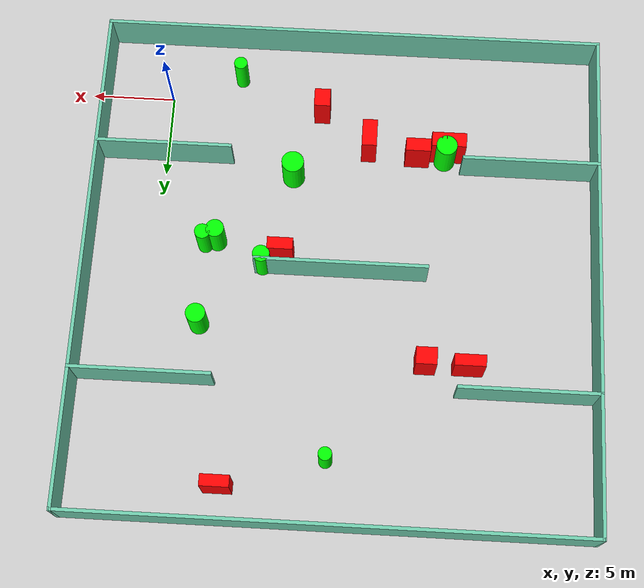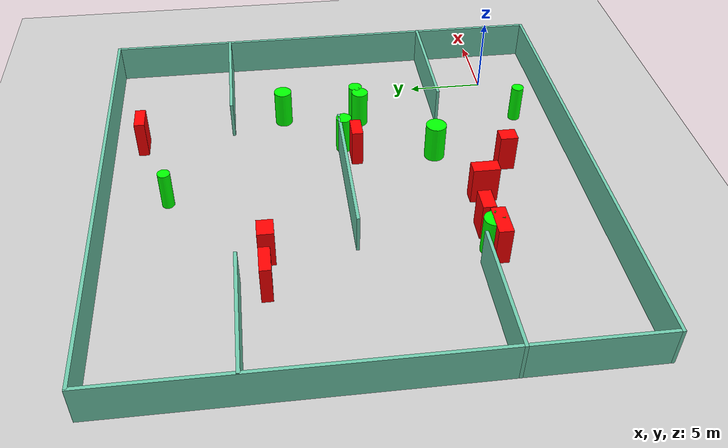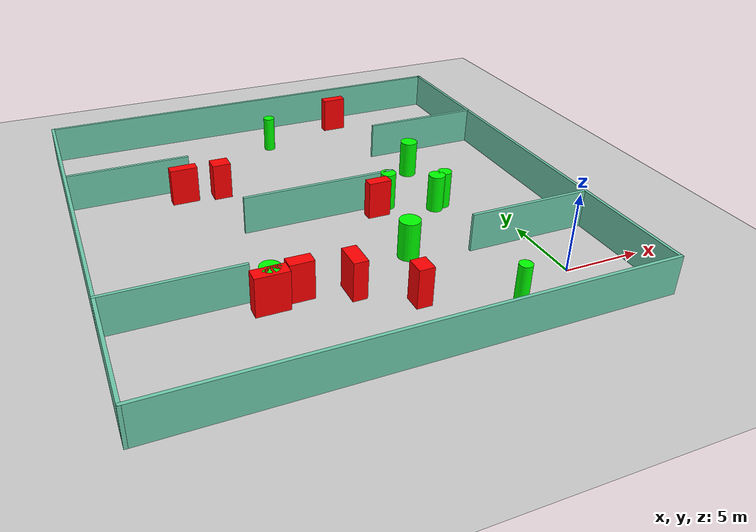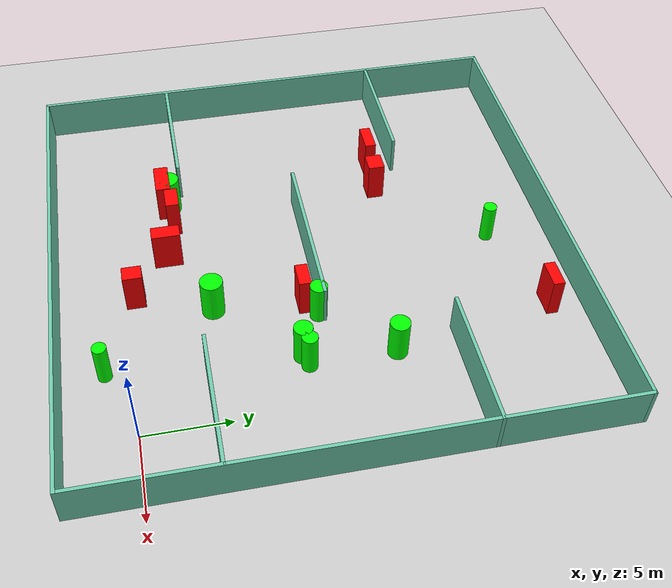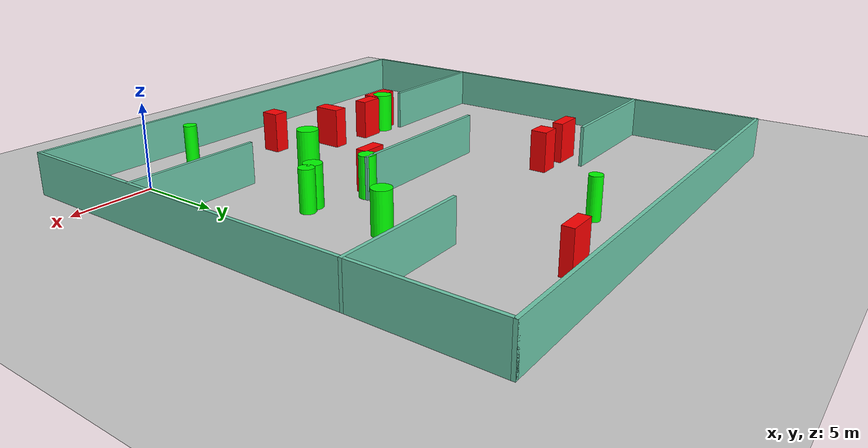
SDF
<sdf version="1.7">
 <world name="default">
  <light name="sun" type="directional">
   <pose>0 0 10 0 -0 0</pose>
   <diffuse>0.8 0.8 0.8 1</diffuse>
   <specular>0.2 0.2 0.2 1</specular>
   <attenuation>
    <range>1000</range>
    <constant>0.9</constant>
    <linear>0.01</linear>
    <quadratic>0.001</quadratic>
   </attenuation>
   <direction>-0.5 0.1 -0.9</direction>
   <spot><inner_angle>0</inner_angle><outer_angle>0</outer_angle><falloff>0</falloff></spot>
  </light>
  <model name="ground_plane">
   <static>1</static>
   <link name="link">
    <collision name="collision">
     <geometry><plane><normal>0 0 1</normal><size>100 100</size></plane></geometry>
     <surface>
      <contact><collide_bitmask>65535</collide_bitmask></contact>
      <friction><ode><mu>100</mu><mu2>50</mu2></ode></friction>
     </surface>
    </collision>
    <visual name="visual">
     <cast_shadows>0</cast_shadows>
     <geometry><plane><normal>0 0 1</normal><size>100 100</size></plane></geometry>
     <material>
      <script><uri>file://media/materials/scripts/gazebo.material</uri><name>Gazebo/Grey</name></script>
     </material>
    </visual>
   </link>
  </model>
  <gravity>0 0 -9.8</gravity>
  <magnetic_field>6e-06 2.3e-05 -4.2e-05</magnetic_field>
  <atmosphere type="adiabatic"/>
  <physics type="ode">
   <max_step_size>0.001</max_step_size>
   <real_time_factor>1</real_time_factor>
   <real_time_update_rate>1000</real_time_update_rate>
  </physics>
  <scene><ambient>0.4 0.4 0.4 1</ambient><background>0.7 0.7 0.7 1</background><shadows>1</shadows></scene>
  <spherical_coordinates>
   <surface_model>EARTH_WGS84</surface_model>
   <latitude_deg>0</latitude_deg>
   <longitude_deg>0</longitude_deg>
   <elevation>0</elevation>
   <heading_deg>0</heading_deg>
  </spherical_coordinates>
  <model name="my_base_walls">
   <link name="Wall_10">
    <collision name="Wall_10_Collision">
     <geometry><box><size>8.2 0.2 2.5</size></box></geometry>
     <pose>0 0 1.25 0 -0 0</pose>
    </collision>
    <visual name="Wall_10_Visual">
     <pose>0 0 1.25 0 -0 0</pose>
     <geometry><box><size>8.2 0.2 2.5</size></box></geometry>
     <material>
      <script><uri>file://media/materials/scripts/gazebo.material</uri><name>Gazebo/Grey</name></script>
      <ambient>0.435294 0.796078 0.67451 1</ambient>
     </material>
     <meta><layer>0</layer></meta>
    </visual>
    <pose>-11 -7 0 0 -0 0</pose>
   </link>
   <link name="Wall_12">
    <collision name="Wall_12_Collision">
     <geometry><box><size>8.2 0.2 2.5</size></box></geometry>
     <pose>0 0 1.25 0 -0 0</pose>
    </collision>
    <visual name="Wall_12_Visual">
     <pose>0 0 1.25 0 -0 0</pose>
     <geometry><box><size>8.2 0.2 2.5</size></box></geometry>
     <material>
      <script><uri>file://media/materials/scripts/gazebo.material</uri><name>Gazebo/Grey</name></script>
      <ambient>0.435294 0.796078 0.67451 1</ambient>
     </material>
     <meta><layer>0</layer></meta>
    </visual>
    <pose>-11 7 0 0 -0 0</pose>
   </link>
   <link name="Wall_14">
    <collision name="Wall_14_Collision">
     <geometry><box><size>8.2 0.2 2.5</size></box></geometry>
     <pose>0 0 1.25 0 -0 0</pose>
    </collision>
    <visual name="Wall_14_Visual">
     <pose>0 0 1.25 0 -0 0</pose>
     <geometry><box><size>8.2 0.2 2.5</size></box></geometry>
     <material>
      <script><uri>file://media/materials/scripts/gazebo.material</uri><name>Gazebo/Grey</name></script>
      <ambient>0.435294 0.796078 0.67451 1</ambient>
     </material>
     <meta><layer>0</layer></meta>
    </visual>
    <pose>11 7 0 0 -0 3.14159</pose>
   </link>
   <link name="Wall_16">
    <collision name="Wall_16_Collision">
     <geometry><box><size>10.2 0.2 2.5</size></box></geometry>
     <pose>0 0 1.25 0 -0 0</pose>
    </collision>
    <visual name="Wall_16_Visual">
     <pose>0 0 1.25 0 -0 0</pose>
     <geometry><box><size>10.2 0.2 2.5</size></box></geometry>
     <material>
      <script><uri>file://media/materials/scripts/gazebo.material</uri><name>Gazebo/Grey</name></script>
      <ambient>0.435294 0.796078 0.67451 1</ambient>
     </material>
     <meta><layer>0</layer></meta>
    </visual>
    <pose>0 0 0 0 -0 3.14159</pose>
   </link>
   <link name="Wall_2">
    <collision name="Wall_2_Collision">
     <geometry><box><size>30.2 0.2 2.5</size></box></geometry>
     <pose>0 0 1.25 0 -0 0</pose>
    </collision>
    <visual name="Wall_2_Visual">
     <pose>0 0 1.25 0 -0 0</pose>
     <geometry><box><size>30.2 0.2 2.5</size></box></geometry>
     <material>
      <script><uri>file://media/materials/scripts/gazebo.material</uri><name>Gazebo/Grey</name></script>
      <ambient>0.435294 0.796078 0.67451 1</ambient>
     </material>
     <meta><layer>0</layer></meta>
    </visual>
    <pose>0 -15 0 0 -0 3.14159</pose>
   </link>
   <link name="Wall_3">
    <collision name="Wall_3_Collision">
     <geometry><box><size>30.2 0.2 2.5</size></box></geometry>
     <pose>0 0 1.25 0 -0 0</pose>
    </collision>
    <visual name="Wall_3_Visual">
     <pose>0 0 1.25 0 -0 0</pose>
     <geometry><box><size>30.2 0.2 2.5</size></box></geometry>
     <material>
      <script><uri>file://media/materials/scripts/gazebo.material</uri><name>Gazebo/Grey</name></script>
      <ambient>0.435294 0.796078 0.67451 1</ambient>
     </material>
     <meta><layer>0</layer></meta>
    </visual>
    <pose>-15 0 0 0 -0 1.5708</pose>
   </link>
   <link name="Wall_4">
    <collision name="Wall_4_Collision">
     <geometry><box><size>30.2 0.2 2.5</size></box></geometry>
     <pose>0 0 1.25 0 -0 0</pose>
    </collision>
    <visual name="Wall_4_Visual">
     <pose>0 0 1.25 0 -0 0</pose>
     <geometry><box><size>30.2 0.2 2.5</size></box></geometry>
     <material>
      <script><uri>file://media/materials/scripts/gazebo.material</uri><name>Gazebo/Grey</name></script>
      <ambient>0.435294 0.796078 0.67451 1</ambient>
     </material>
     <meta><layer>0</layer></meta>
    </visual>
    <pose>0 15 0 0 -0 0</pose>
   </link>
   <link name="Wall_6">
    <collision name="Wall_6_Collision">
     <geometry><box><size>30.2 0.2 2.5</size></box></geometry>
     <pose>0 0 1.25 0 -0 0</pose>
    </collision>
    <visual name="Wall_6_Visual">
     <pose>0 0 1.25 0 -0 0</pose>
     <geometry><box><size>30.2 0.2 2.5</size></box></geometry>
     <material>
      <script><uri>file://media/materials/scripts/gazebo.material</uri><name>Gazebo/Grey</name></script>
      <ambient>0.435294 0.796078 0.67451 1</ambient>
     </material>
     <meta><layer>0</layer></meta>
    </visual>
    <pose>15 0 0 0 -0 1.5708</pose>
   </link>
   <link name="Wall_8">
    <collision name="Wall_8_Collision">
     <geometry><box><size>8.2 0.2 2.5</size></box></geometry>
     <pose>0 0 1.25 0 -0 0</pose>
    </collision>
    <visual name="Wall_8_Visual">
     <pose>0 0 1.25 0 -0 0</pose>
     <geometry><box><size>8.2 0.2 2.5</size></box></geometry>
     <material>
      <script><uri>file://media/materials/scripts/gazebo.material</uri><name>Gazebo/Grey</name></script>
      <ambient>0.435294 0.796078 0.67451 1</ambient>
     </material>
     <meta><layer>0</layer></meta>
    </visual>
    <pose>11 -7 0 0 -0 3.14159</pose>
   </link>
   <static>1</static>
   <pose>-11 11 0 0 -0 0</pose>
  </model>
  <model name="cylinder1">
   <static>1</static>
   <link name="link">
    <inertial>
     <mass>1</mass>
     <inertia><ixx>0.5</ixx><ixy>0</ixy><ixz>0</ixz><iyy>0.5</iyy><iyz>0</iyz><izz>1</izz></inertia>
    </inertial>
    <collision name="collision">
     <geometry><cylinder><radius>0.39953588530757655</radius><length>2.5</length></cylinder></geometry>
    </collision>
    <visual name="visual">
     <geometry><cylinder><radius>0.39953588530757655</radius><length>2.5</length></cylinder></geometry>
     <material>
      <ambient>0 1 0 1</ambient>
      <diffuse>0 1 0 1</diffuse>
      <specular>0.1 0.1 0.1 1</specular>
      <emissive>0 0 0 0</emissive>
     </material>
    </visual>
   </link>
   <pose>-4.225117987874423 -1.530377562288848 1.25 0 0 0</pose>
  </model>
  <model name="cylinder2">
   <static>1</static>
   <link name="link">
    <inertial>
     <mass>1</mass>
     <inertia><ixx>0.5</ixx><ixy>0</ixy><ixz>0</ixz><iyy>0.5</iyy><iyz>0</iyz><izz>1</izz></inertia>
    </inertial>
    <collision name="collision">
     <geometry><cylinder><radius>0.5021994619351844</radius><length>2.5</length></cylinder></geometry>
    </collision>
    <visual name="visual">
     <geometry><cylinder><radius>0.5021994619351844</radius><length>2.5</length></cylinder></geometry>
     <material>
      <ambient>0 1 0 1</ambient>
      <diffuse>0 1 0 1</diffuse>
      <specular>0.1 0.1 0.1 1</specular>
      <emissive>0 0 0 0</emissive>
     </material>
    </visual>
   </link>
   <pose>-6.354709042963311 10.72125062067855 1.25 0 0 0</pose>
  </model>
  <model name="cylinder3">
   <static>1</static>
   <link name="link">
    <inertial>
     <mass>1</mass>
     <inertia><ixx>0.5</ixx><ixy>0</ixy><ixz>0</ixz><iyy>0.5</iyy><iyz>0</iyz><izz>1</izz></inertia>
    </inertial>
    <collision name="collision">
     <geometry><cylinder><radius>0.3908945244252667</radius><length>2.5</length></cylinder></geometry>
    </collision>
    <visual name="visual">
     <geometry><cylinder><radius>0.3908945244252667</radius><length>2.5</length></cylinder></geometry>
     <material>
      <ambient>0 1 0 1</ambient>
      <diffuse>0 1 0 1</diffuse>
      <specular>0.1 0.1 0.1 1</specular>
      <emissive>0 0 0 0</emissive>
     </material>
    </visual>
   </link>
   <pose>-10.735094178507044 22.181350953769666 1.25 0 0 0</pose>
  </model>
  <model name="cylinder4">
   <static>1</static>
   <link name="link">
    <inertial>
     <mass>1</mass>
     <inertia><ixx>0.5</ixx><ixy>0</ixy><ixz>0</ixz><iyy>0.5</iyy><iyz>0</iyz><izz>1</izz></inertia>
    </inertial>
    <collision name="collision">
     <geometry><cylinder><radius>0.45488550672376277</radius><length>2.5</length></cylinder></geometry>
    </collision>
    <visual name="visual">
     <geometry><cylinder><radius>0.45488550672376277</radius><length>2.5</length></cylinder></geometry>
     <material>
      <ambient>0 1 0 1</ambient>
      <diffuse>0 1 0 1</diffuse>
      <specular>0.1 0.1 0.1 1</specular>
      <emissive>0 0 0 0</emissive>
     </material>
    </visual>
   </link>
   <pose>-2.839135456511009 9.535449105735696 1.25 0 0 0</pose>
  </model>
  <model name="cylinder5">
   <static>1</static>
   <link name="link">
    <inertial>
     <mass>1</mass>
     <inertia><ixx>0.5</ixx><ixy>0</ixy><ixz>0</ixz><iyy>0.5</iyy><iyz>0</iyz><izz>1</izz></inertia>
    </inertial>
    <collision name="collision">
     <geometry><cylinder><radius>0.5386773435699412</radius><length>2.5</length></cylinder></geometry>
    </collision>
    <visual name="visual">
     <geometry><cylinder><radius>0.5386773435699412</radius><length>2.5</length></cylinder></geometry>
     <material>
      <ambient>0 1 0 1</ambient>
      <diffuse>0 1 0 1</diffuse>
      <specular>0.1 0.1 0.1 1</specular>
      <emissive>0 0 0 0</emissive>
     </material>
    </visual>
   </link>
   <pose>-3.5486760895364995 9.306538325757305 1.25 0 0 0</pose>
  </model>
  <model name="cylinder6">
   <static>1</static>
   <link name="link">
    <inertial>
     <mass>1</mass>
     <inertia><ixx>0.5</ixx><ixy>0</ixy><ixz>0</ixz><iyy>0.5</iyy><iyz>0</iyz><izz>1</izz></inertia>
    </inertial>
    <collision name="collision">
     <geometry><cylinder><radius>0.5738479885279173</radius><length>2.5</length></cylinder></geometry>
    </collision>
    <visual name="visual">
     <geometry><cylinder><radius>0.5738479885279173</radius><length>2.5</length></cylinder></geometry>
     <material>
      <ambient>0 1 0 1</ambient>
      <diffuse>0 1 0 1</diffuse>
      <specular>0.1 0.1 0.1 1</specular>
      <emissive>0 0 0 0</emissive>
     </material>
    </visual>
   </link>
   <pose>-2.887811676719412 14.510876276445536 1.25 0 0 0</pose>
  </model>
  <model name="cylinder7">
   <static>1</static>
   <link name="link">
    <inertial>
     <mass>1</mass>
     <inertia><ixx>0.5</ixx><ixy>0</ixy><ixz>0</ixz><iyy>0.5</iyy><iyz>0</iyz><izz>1</izz></inertia>
    </inertial>
    <collision name="collision">
     <geometry><cylinder><radius>0.6621544283989319</radius><length>2.5</length></cylinder></geometry>
    </collision>
    <visual name="visual">
     <geometry><cylinder><radius>0.6621544283989319</radius><length>2.5</length></cylinder></geometry>
     <material>
      <ambient>0 1 0 1</ambient>
      <diffuse>0 1 0 1</diffuse>
      <specular>0.1 0.1 0.1 1</specular>
      <emissive>0 0 0 0</emissive>
     </material>
    </visual>
   </link>
   <pose>-7.819512430454065 4.851296563185095 1.25 0 0 0</pose>
  </model>
  <model name="cylinder8">
   <static>1</static>
   <link name="link">
    <inertial>
     <mass>1</mass>
     <inertia><ixx>0.5</ixx><ixy>0</ixy><ixz>0</ixz><iyy>0.5</iyy><iyz>0</iyz><izz>1</izz></inertia>
    </inertial>
    <collision name="collision">
     <geometry><cylinder><radius>0.6298856025372874</radius><length>2.5</length></cylinder></geometry>
    </collision>
    <visual name="visual">
     <geometry><cylinder><radius>0.6298856025372874</radius><length>2.5</length></cylinder></geometry>
     <material>
      <ambient>0 1 0 1</ambient>
      <diffuse>0 1 0 1</diffuse>
      <specular>0.1 0.1 0.1 1</specular>
      <emissive>0 0 0 0</emissive>
     </material>
    </visual>
   </link>
   <pose>-16.945579343401352 3.2905494434318037 1.25 0 0 0</pose>
  </model>
  <model name="box1">
   <static>1</static>
   <link name="link">
    <inertial>
     <mass>1</mass>
     <inertia><ixx>0.083</ixx><ixy>0</ixy><ixz>0</ixz><iyy>0.083</iyy><iyz>0</iyz><izz>0.083</izz></inertia>
    </inertial>
    <collision name="collision">
     <geometry><box><size>0.893144355504677 1.6880626439264854 2.5</size></box></geometry>
    </collision>
    <visual name="visual">
     <geometry><box><size>0.893144355504677 1.6880626439264854 2.5</size></box></geometry>
     <material>
      <ambient>1 0 0 1</ambient>
      <diffuse>1 0 0 1</diffuse>
      <specular>0.1 0.1 0.1 1</specular>
      <emissive>0 0 0 0</emissive>
     </material>
    </visual>
    <sensor name="my_contact" type="contact">
     <contact><collision>box_collision</collision><topic>__default_topic__</topic></contact>
    </sensor>
   </link>
   <pose>-12.30226979156889 2.6851811940887593 1.25 0 0 0</pose>
  </model>
  <model name="box2">
   <static>1</static>
   <link name="link">
    <inertial>
     <mass>1</mass>
     <inertia><ixx>0.083</ixx><ixy>0</ixy><ixz>0</ixz><iyy>0.083</iyy><iyz>0</iyz><izz>0.083</izz></inertia>
    </inertial>
    <collision name="collision">
     <geometry><box><size>1.6654228239862008 0.6713137461866022 2.5</size></box></geometry>
    </collision>
    <visual name="visual">
     <geometry><box><size>1.6654228239862008 0.6713137461866022 2.5</size></box></geometry>
     <material>
      <ambient>1 0 0 1</ambient>
      <diffuse>1 0 0 1</diffuse>
      <specular>0.1 0.1 0.1 1</specular>
      <emissive>0 0 0 0</emissive>
     </material>
    </visual>
    <sensor name="my_contact" type="contact">
     <contact><collision>box_collision</collision><topic>__default_topic__</topic></contact>
    </sensor>
   </link>
   <pose>-4.78072063853257 23.977421970391482 1.25 0 0 0</pose>
  </model>
  <model name="box3">
   <static>1</static>
   <link name="link">
    <inertial>
     <mass>1</mass>
     <inertia><ixx>0.083</ixx><ixy>0</ixy><ixz>0</ixz><iyy>0.083</iyy><iyz>0</iyz><izz>0.083</izz></inertia>
    </inertial>
    <collision name="collision">
     <geometry><box><size>2.061727535996447 0.883531601990609 2.5</size></box></geometry>
    </collision>
    <visual name="visual">
     <geometry><box><size>2.061727535996447 0.883531601990609 2.5</size></box></geometry>
     <material>
      <ambient>1 0 0 1</ambient>
      <diffuse>1 0 0 1</diffuse>
      <specular>0.1 0.1 0.1 1</specular>
      <emissive>0 0 0 0</emissive>
     </material>
    </visual>
    <sensor name="my_contact" type="contact">
     <contact><collision>box_collision</collision><topic>__default_topic__</topic></contact>
    </sensor>
   </link>
   <pose>-17.083339471779418 2.8977800425477938 1.25 0 0 0</pose>
  </model>
  <model name="box4">
   <static>1</static>
   <link name="link">
    <inertial>
     <mass>1</mass>
     <inertia><ixx>0.083</ixx><ixy>0</ixy><ixz>0</ixz><iyy>0.083</iyy><iyz>0</iyz><izz>0.083</izz></inertia>
    </inertial>
    <collision name="collision">
     <geometry><box><size>1.7966082391103657 0.6744044159898195 2.5</size></box></geometry>
    </collision>
    <visual name="visual">
     <geometry><box><size>1.7966082391103657 0.6744044159898195 2.5</size></box></geometry>
     <material>
      <ambient>1 0 0 1</ambient>
      <diffuse>1 0 0 1</diffuse>
      <specular>0.1 0.1 0.1 1</specular>
      <emissive>0 0 0 0</emissive>
     </material>
    </visual>
    <sensor name="my_contact" type="contact">
     <contact><collision>box_collision</collision><topic>__default_topic__</topic></contact>
    </sensor>
   </link>
   <pose>-18.623087491662424 16.437481076457694 1.25 0 0 0</pose>
  </model>
  <model name="box5">
   <static>1</static>
   <link name="link">
    <inertial>
     <mass>1</mass>
     <inertia><ixx>0.083</ixx><ixy>0</ixy><ixz>0</ixz><iyy>0.083</iyy><iyz>0</iyz><izz>0.083</izz></inertia>
    </inertial>
    <collision name="collision">
     <geometry><box><size>1.4873884291594464 0.8090830391501613 2.5</size></box></geometry>
    </collision>
    <visual name="visual">
     <geometry><box><size>1.4873884291594464 0.8090830391501613 2.5</size></box></geometry>
     <material>
      <ambient>1 0 0 1</ambient>
      <diffuse>1 0 0 1</diffuse>
      <specular>0.1 0.1 0.1 1</specular>
      <emissive>0 0 0 0</emissive>
     </material>
    </visual>
    <sensor name="my_contact" type="contact">
     <contact><collision>box_collision</collision><topic>__default_topic__</topic></contact>
    </sensor>
   </link>
   <pose>-15.258925218375024 3.325725010790208 1.25 0 0 0</pose>
  </model>
  <model name="box6">
   <static>1</static>
   <link name="link">
    <inertial>
     <mass>1</mass>
     <inertia><ixx>0.083</ixx><ixy>0</ixy><ixz>0</ixz><iyy>0.083</iyy><iyz>0</iyz><izz>0.083</izz></inertia>
    </inertial>
    <collision name="collision">
     <geometry><box><size>1.5071059691775914 0.7142397383002999 2.5</size></box></geometry>
    </collision>
    <visual name="visual">
     <geometry><box><size>1.5071059691775914 0.7142397383002999 2.5</size></box></geometry>
     <material>
      <ambient>1 0 0 1</ambient>
      <diffuse>1 0 0 1</diffuse>
      <specular>0.1 0.1 0.1 1</specular>
      <emissive>0 0 0 0</emissive>
     </material>
    </visual>
    <sensor name="my_contact" type="contact">
     <contact><collision>box_collision</collision><topic>__default_topic__</topic></contact>
    </sensor>
   </link>
   <pose>-7.409944639826627 10.02582217789259 1.25 0 0 0</pose>
  </model>
  <model name="box7">
   <static>1</static>
   <link name="link">
    <inertial>
     <mass>1</mass>
     <inertia><ixx>0.083</ixx><ixy>0</ixy><ixz>0</ixz><iyy>0.083</iyy><iyz>0</iyz><izz>0.083</izz></inertia>
    </inertial>
    <collision name="collision">
     <geometry><box><size>1.2159978756909768 1.0001625058047594 2.5</size></box></geometry>
    </collision>
    <visual name="visual">
     <geometry><box><size>1.2159978756909768 1.0001625058047594 2.5</size></box></geometry>
     <material>
      <ambient>1 0 0 1</ambient>
      <diffuse>1 0 0 1</diffuse>
      <specular>0.1 0.1 0.1 1</specular>
      <emissive>0 0 0 0</emissive>
     </material>
    </visual>
    <sensor name="my_contact" type="contact">
     <contact><collision>box_collision</collision><topic>__default_topic__</topic></contact>
    </sensor>
   </link>
   <pose>-16.144405594593373 16.3076286206024 1.25 0 0 0</pose>
  </model>
  <model name="box8">
   <static>1</static>
   <link name="link">
    <inertial>
     <mass>1</mass>
     <inertia><ixx>0.083</ixx><ixy>0</ixy><ixz>0</ixz><iyy>0.083</iyy><iyz>0</iyz><izz>0.083</izz></inertia>
    </inertial>
    <collision name="collision">
     <geometry><box><size>0.9583105478747834 1.1180741739041227 2.5</size></box></geometry>
    </collision>
    <visual name="visual">
     <geometry><box><size>0.9583105478747834 1.1180741739041227 2.5</size></box></geometry>
     <material>
      <ambient>1 0 0 1</ambient>
      <diffuse>1 0 0 1</diffuse>
      <specular>0.1 0.1 0.1 1</specular>
      <emissive>0 0 0 0</emissive>
     </material>
    </visual>
    <sensor name="my_contact" type="contact">
     <contact><collision>box_collision</collision><topic>__default_topic__</topic></contact>
    </sensor>
   </link>
   <pose>-9.337866638882957 0.5154099001874703 1.25 0 0 0</pose>
  </model>
 </world>
</sdf>
